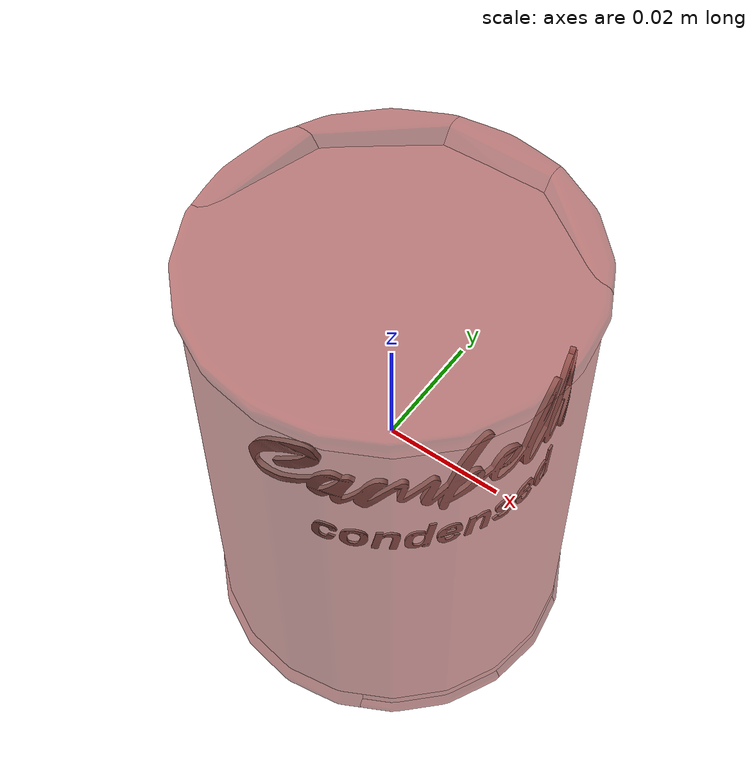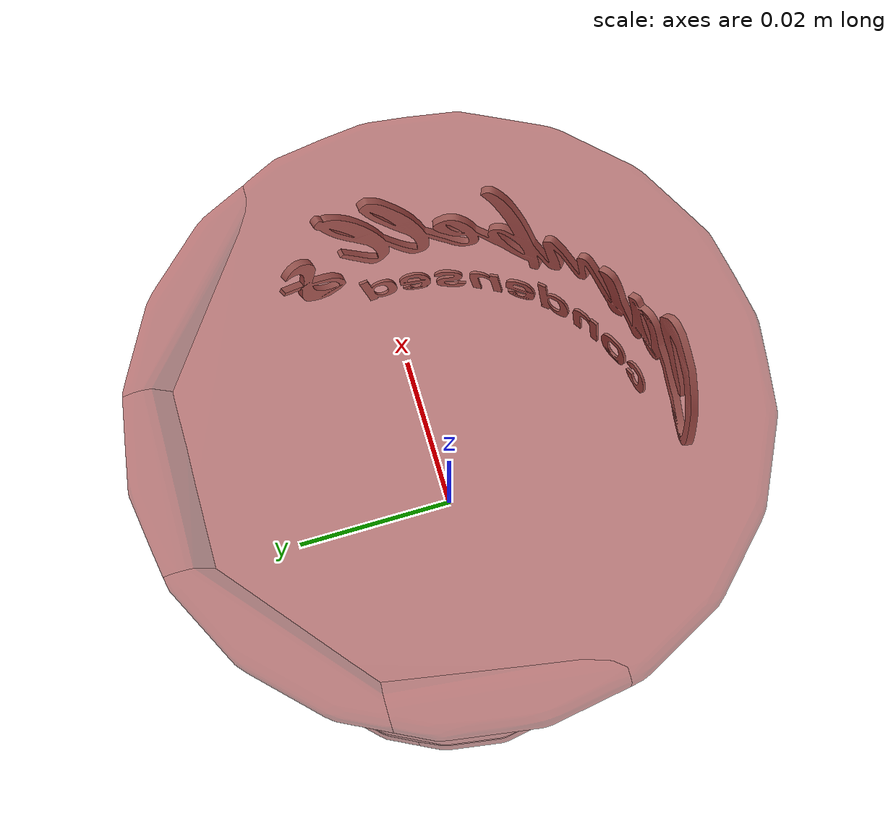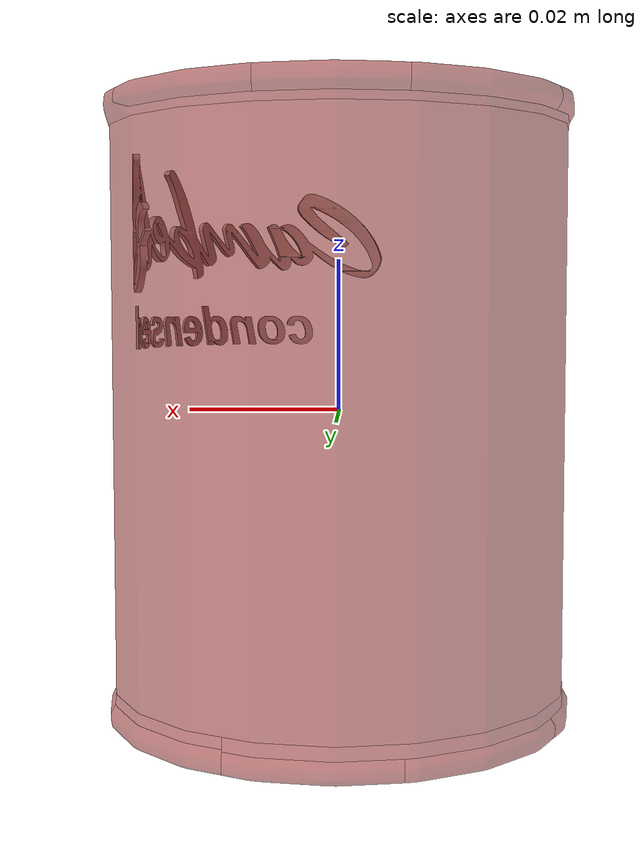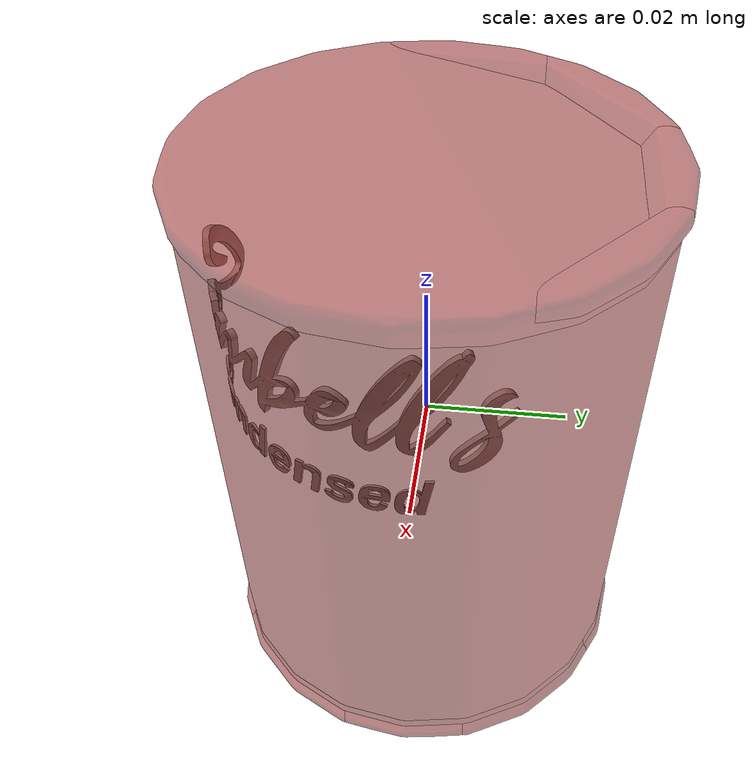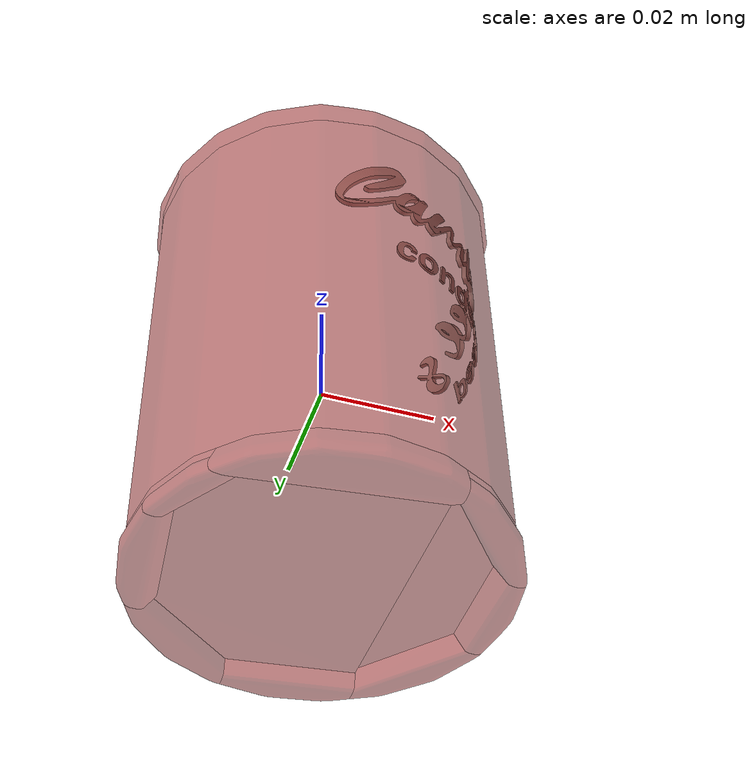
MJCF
<?xml version='1.0' encoding='utf-8'?>
<mujoco model="more_canned_food_21">
  <asset>
    <mesh file="visual/model_normalized_0.obj" name="model_normalized_0_vis" scale="0.08099999999999997 0.08099999999999997 0.08099999999999997" refquat="1.0 0.0 0.0 0.0" />
    <texture type="2d" name="image0" file="visual/image0.png" />
    <material name="lambert1" texture="image0" specular="0.5" shininess="0.25" />
    <mesh file="collision/collision_mesh_collision_0.obj" name="canned_collision_mesh_0" scale="0.08099999999999997 0.08099999999999997 0.08099999999999997" refquat="1.0 0.0 0.0 0.0" />
    <mesh file="collision/collision_mesh_collision_1.obj" name="canned_collision_mesh_1" scale="0.08099999999999997 0.08099999999999997 0.08099999999999997" refquat="1.0 0.0 0.0 0.0" />
    <mesh file="collision/collision_mesh_collision_2.obj" name="canned_collision_mesh_2" scale="0.08099999999999997 0.08099999999999997 0.08099999999999997" refquat="1.0 0.0 0.0 0.0" />
    <mesh file="collision/collision_mesh_collision_3.obj" name="canned_collision_mesh_3" scale="0.08099999999999997 0.08099999999999997 0.08099999999999997" refquat="1.0 0.0 0.0 0.0" />
    <mesh file="collision/collision_mesh_collision_4.obj" name="canned_collision_mesh_4" scale="0.08099999999999997 0.08099999999999997 0.08099999999999997" refquat="1.0 0.0 0.0 0.0" />
    <mesh file="collision/collision_mesh_collision_5.obj" name="canned_collision_mesh_5" scale="0.08099999999999997 0.08099999999999997 0.08099999999999997" refquat="1.0 0.0 0.0 0.0" />
    <mesh file="collision/collision_mesh_collision_6.obj" name="canned_collision_mesh_6" scale="0.08099999999999997 0.08099999999999997 0.08099999999999997" refquat="1.0 0.0 0.0 0.0" />
    <mesh file="collision/collision_mesh_collision_7.obj" name="canned_collision_mesh_7" scale="0.08099999999999997 0.08099999999999997 0.08099999999999997" refquat="1.0 0.0 0.0 0.0" />
    <mesh file="collision/collision_mesh_collision_8.obj" name="canned_collision_mesh_8" scale="0.08099999999999997 0.08099999999999997 0.08099999999999997" refquat="1.0 0.0 0.0 0.0" />
    <mesh file="collision/collision_mesh_collision_9.obj" name="canned_collision_mesh_9" scale="0.08099999999999997 0.08099999999999997 0.08099999999999997" refquat="1.0 0.0 0.0 0.0" />
    <mesh file="collision/collision_mesh_collision_10.obj" name="canned_collision_mesh_10" scale="0.08099999999999997 0.08099999999999997 0.08099999999999997" refquat="1.0 0.0 0.0 0.0" />
    <mesh file="collision/collision_mesh_collision_11.obj" name="canned_collision_mesh_11" scale="0.08099999999999997 0.08099999999999997 0.08099999999999997" refquat="1.0 0.0 0.0 0.0" />
    <mesh file="collision/collision_mesh_collision_12.obj" name="canned_collision_mesh_12" scale="0.08099999999999997 0.08099999999999997 0.08099999999999997" refquat="1.0 0.0 0.0 0.0" />
    <mesh file="collision/collision_mesh_collision_13.obj" name="canned_collision_mesh_13" scale="0.08099999999999997 0.08099999999999997 0.08099999999999997" refquat="1.0 0.0 0.0 0.0" />
    <mesh file="collision/collision_mesh_collision_14.obj" name="canned_collision_mesh_14" scale="0.08099999999999997 0.08099999999999997 0.08099999999999997" refquat="1.0 0.0 0.0 0.0" />
    <mesh file="collision/collision_mesh_collision_15.obj" name="canned_collision_mesh_15" scale="0.08099999999999997 0.08099999999999997 0.08099999999999997" refquat="1.0 0.0 0.0 0.0" />
  </asset>
  <default>
    <default class="region">
      <geom group="1" conaffinity="0" contype="0" rgba="0 1 0 0" mass="0" />
    </default>
    <default class="collision">
      <geom group="0" rgba="0.5 0 0 0.5" density="1257.814308346" />
    </default>
  </default>
  <worldbody>
    <body>
      <body name="object">
        <geom solimp="0.998 0.998 0.001" solref="0.001 1" density="125.781430835" friction="0.95 0.3 0.1" type="mesh" mesh="model_normalized_0_vis" conaffinity="0" contype="0" group="1" material="lambert1" />
        <geom class="region" name="reg_bbox" type="box" pos="0.0 3.126599999995482e-07 0.0" size="0.030835340009999993 0.03083502734999999 0.04094550161999999" />
        <geom mesh="canned_collision_mesh_0" type="mesh" class="collision" />
        <geom mesh="canned_collision_mesh_1" type="mesh" class="collision" />
        <geom mesh="canned_collision_mesh_2" type="mesh" class="collision" />
        <geom mesh="canned_collision_mesh_3" type="mesh" class="collision" />
        <geom mesh="canned_collision_mesh_4" type="mesh" class="collision" />
        <geom mesh="canned_collision_mesh_5" type="mesh" class="collision" />
        <geom mesh="canned_collision_mesh_6" type="mesh" class="collision" />
        <geom mesh="canned_collision_mesh_7" type="mesh" class="collision" />
        <geom mesh="canned_collision_mesh_8" type="mesh" class="collision" />
        <geom mesh="canned_collision_mesh_9" type="mesh" class="collision" />
        <geom mesh="canned_collision_mesh_10" type="mesh" class="collision" />
        <geom mesh="canned_collision_mesh_11" type="mesh" class="collision" />
        <geom mesh="canned_collision_mesh_12" type="mesh" class="collision" />
        <geom mesh="canned_collision_mesh_13" type="mesh" class="collision" />
        <geom mesh="canned_collision_mesh_14" type="mesh" class="collision" />
        <geom mesh="canned_collision_mesh_15" type="mesh" class="collision" />
      </body>
    </body>
  </worldbody>
</mujoco>
